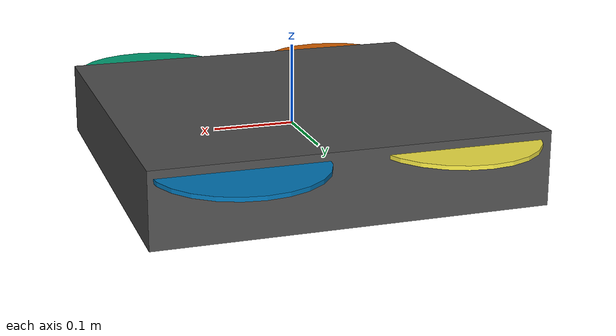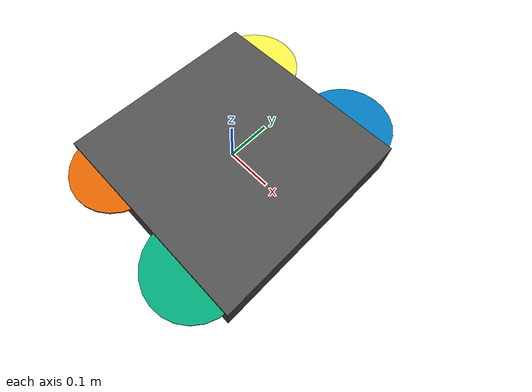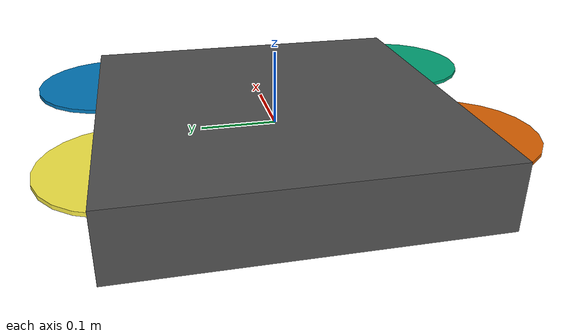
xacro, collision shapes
<?xml version="1.0"?>
<robot name="iris" xmlns:xacro="http://ros.org/wiki/xacro">
  <!-- Properties -->
  <xacro:property name="ns" value="iris" />
  <xacro:property name="mesh_root" value="package://ardupilot_sim/agents/iris/meshes" />
  <xacro:property name="mass" value="1.5" /> <!-- [kg] -->
  <xacro:property name="body_inertia">
    <inertia ixx="0.008" ixy="0.0" ixz="0.0" iyy="0.0815" iyz="0.0" izz="0.017" />
  </xacro:property>
  <xacro:property name="rotor_inertia">
    <mass value="0.025"/>
    <inertia ixx=".0003675" ixy="0.0" ixz="0.0" iyy="0.0003698" iyz="0.0" izz="0.00003187" />
  </xacro:property>

  <!-- *********************** GAZEBO ROBOT DEFINITION ******************* -->
  <link name="${ns}/base_link">
    <inertial>
      <mass value="${mass}" />
      <origin xyz="0 0 0" />
      <xacro:insert_block name="body_inertia" />
    </inertial>

    <collision>
      <origin xyz="0 0 -0.01" rpy="0 0 0" />
      <geometry>
        <box size="0.47 0.47 0.09"/>
      </geometry>
    </collision>

    <!-- Iris Visual -->
    <visual>
      <geometry>
        <mesh filename="${mesh_root}/iris.dae" scale="1 1 1" />
      </geometry>
    </visual>
  </link>

  <!-- Add collision contact and friction params -->
  <gazebo reference="${ns}/base_link">
    <!-- Collision -->
    <maxVel>100.0</maxVel>
    <minDepth>0.001</minDepth>
    <!-- Friction -->
    <mu1>1.0</mu1>
    <mu2>1.0</mu2>
  </gazebo>

  <!-- Add visual params -->
  <gazebo reference="${ns}/base_link">
    <material>Gazebo/DarkGrey</material>
  </gazebo>

  <!-- *********************** GAZEBO ROBOT PLUGINS ******************* -->
  <xacro:include filename="$(find ardupilot_sim)/xacro/imu.xacro" />
  <xacro:imu ns="${ns}" update_rate="1000">
    <axis xyz="0 0 1"/>
    <pose>0 0 0 3.141593 0 0</pose>
  </xacro:imu>

  <xacro:include filename="$(find ardupilot_sim)/xacro/rotor.xacro" />
  <xacro:rotor ns="${ns}" motor_number="0" prop_dir="ccw">
    <origin xyz="0.13 -0.22 0.023" rpy="0 0 0" />
  </xacro:rotor>
  <xacro:rotor ns="${ns}" motor_number="1" prop_dir="ccw">
    <origin xyz="-0.13 0.2 0.023" rpy="0 0 0" />
  </xacro:rotor>
  <xacro:rotor ns="${ns}" motor_number="2" prop_dir="cw">
    <origin xyz="0.13 0.22 0.023" rpy="0 0 0" />
  </xacro:rotor>
  <xacro:rotor ns="${ns}" motor_number="3" prop_dir="cw">
    <origin xyz="-0.13 -0.2 0.023" rpy="0 0 0" />
  </xacro:rotor>

  <xacro:include filename="$(find ardupilot_sim)/xacro/arducopter.xacro" />
  <xacro:arducopter ns="${ns}" />
</robot>

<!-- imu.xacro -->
<robot xmlns:xacro="http://ros.org/wiki/xacro">
  <xacro:macro name="imu" params="ns update_rate *axis *pose">
    <link name="${ns}/imu_link">
      <inertial>
        <mass value="0.15" />
        <origin xyz="0 0 0" />
        <inertia ixx="0.00001" ixy="0.0" ixz="0.0" iyy="0.00002" iyz="0.0" izz="0.00003" />
      </inertial>
    </link>
    <joint name="${ns}/imu_joint" type="revolute">
      <parent link="${ns}/base_link" />
      <child link="${ns}/imu_link" />
      <origin xyz="0 0 0" rpy="0 0 0"/>
      <xacro:insert_block name="axis" />
      <dynamics damping="1"/>
      <limit effort="0" velocity="0" lower="0" upper="0" />
    </joint>
    <gazebo reference="${ns}/imu_link">
      <sensor name="imu_sensor" type="imu">
        <xacro:insert_block name="pose" />
        <always_on>1</always_on>
        <update_rate>${update_rate}</update_rate>
      </sensor>
    </gazebo>
  </xacro:macro>
</robot>

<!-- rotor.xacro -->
<robot xmlns:xacro="http://ros.org/wiki/xacro">
  <xacro:macro name="rotor" params="ns motor_number prop_dir *origin">
    <link name="${ns}/rotor_${motor_number}">
      <inertial>
        <!--Look in iris.xacro or plane.xacro for definition -->
        <xacro:insert_block name="rotor_inertia" />
      </inertial>

      <collision>
        <geometry>
          <cylinder length="0.005" radius="0.1" />
        </geometry>
      </collision>

      <visual>
        <geometry>
          <mesh filename="${mesh_root}/iris_prop_${prop_dir}.dae" scale="1 1 1" />
        </geometry>
      </visual>
    </link>
    <joint name="${ns}/rotor_${motor_number}_joint" type="revolute">
      <xacro:insert_block name="origin" />
      <parent link="${ns}/base_link" />
      <child link="${ns}/rotor_${motor_number}" />
      <axis xyz="0 0 1"/>
      <dynamics damping="0.004"/>
      <limit effort="-1" velocity="-1" lower="-1e+16" upper="1e+16" />
    </joint>

    <gazebo reference="${ns}/rotor_${motor_number}">
      <xacro:if value="${motor_number == 0 or motor_number == 2}">
        <material>Gazebo/Blue</material>
      </xacro:if>
      <xacro:if value="${motor_number == 1 or motor_number == 3}">
        <material>Gazebo/Grey</material>
      </xacro:if>
    </gazebo>

    <gazebo>
      <plugin name="rotor_${motor_number}_blade_1" filename="libLiftDragPlugin.so">
        <a0>0.3</a0>
        <alpha_stall>1.4</alpha_stall>
        <cla>4.2500</cla>
        <cda>0.10</cda>
        <cma>0.00</cma>
        <cla_stall>-0.025</cla_stall>
        <cda_stall>0.0</cda_stall>
        <cma_stall>0.0</cma_stall>
        <area>0.002</area>
        <air_density>1.2041</air_density>
        <cp>0.084 0 0</cp>
        <xacro:if value="${prop_dir == 'ccw'}"><forward>0 1 0</forward></xacro:if>
        <xacro:if value="${prop_dir == 'cw'}"><forward>0 -1 0</forward></xacro:if>
        <upward>0 0 1</upward>
        <link_name>${ns}/rotor_${motor_number}</link_name>
      </plugin>
      <plugin name="rotor_${motor_number}_blade_2" filename="libLiftDragPlugin.so">
        <a0>0.3</a0>
        <alpha_stall>1.4</alpha_stall>
        <cla>4.2500</cla>
        <cda>0.10</cda>
        <cma>0.00</cma>
        <cla_stall>-0.025</cla_stall>
        <cda_stall>0.0</cda_stall>
        <cma_stall>0.0</cma_stall>
        <area>0.002</area>
        <air_density>1.2041</air_density>
        <cp>-0.084 0 0</cp>
        <xacro:if value="${prop_dir == 'ccw'}"><forward>0 -1 0</forward></xacro:if>
        <xacro:if value="${prop_dir == 'cw'}"><forward>0 1 0</forward></xacro:if>
        <upward>0 0 1</upward>
        <link_name>${ns}/rotor_${motor_number}</link_name>
      </plugin>
    </gazebo>
  </xacro:macro>
</robot>
